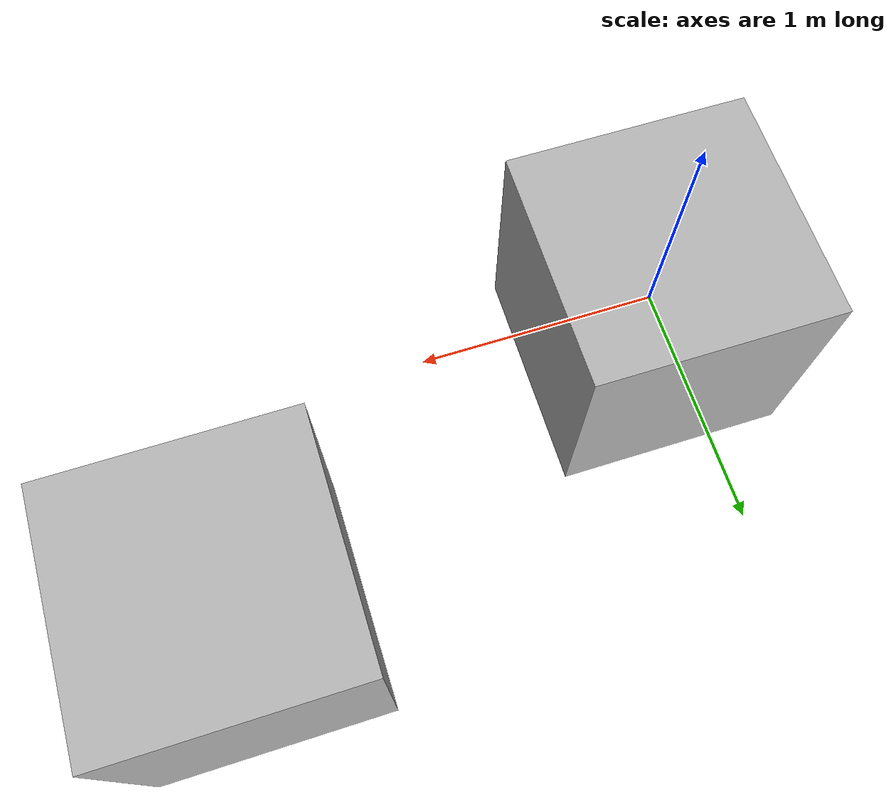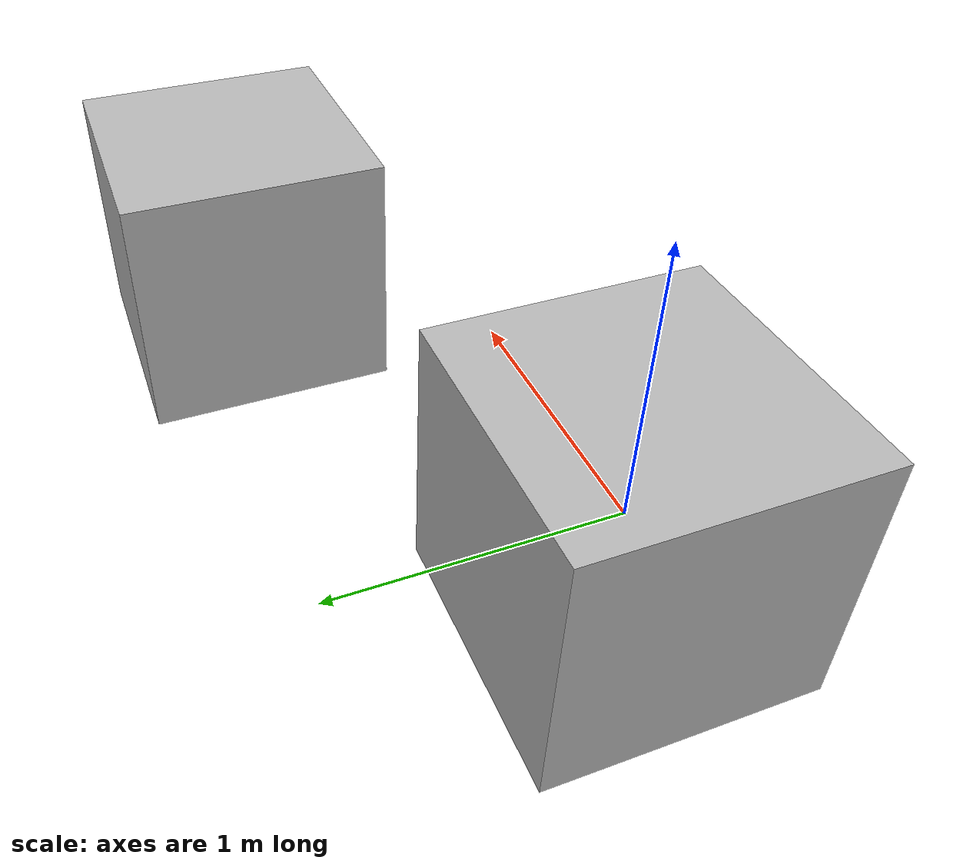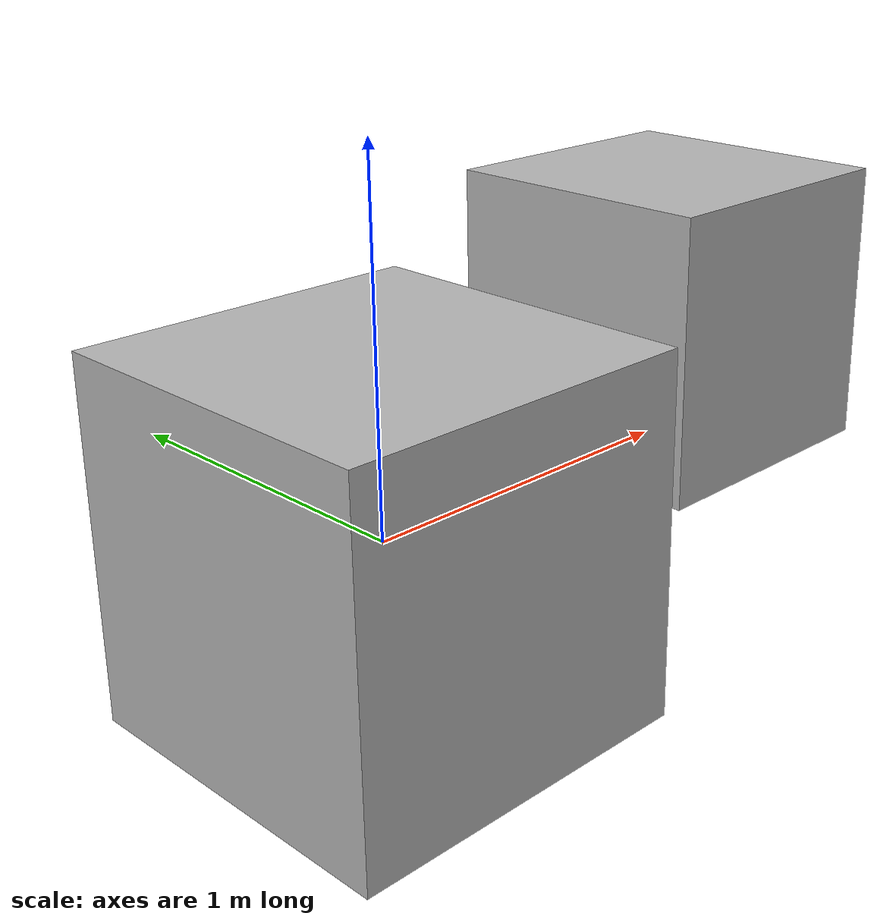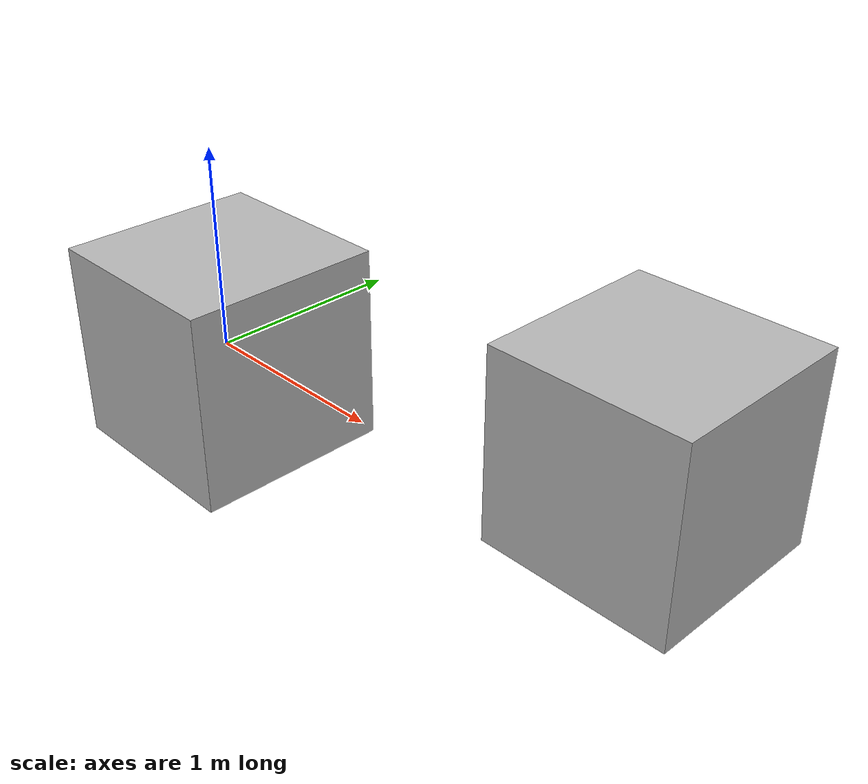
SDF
<?xml version="1.0"?>
<sdf version="1.4">
    <world name="Quasistatic Simulator Test">
        <include><uri>model://sun</uri></include>
        <include>
            <uri>model://box</uri>
            <name>hand</name>
            <pose>0 0 0 0 0 0</pose>
            <plugin name="plugin_test" filename="libplugin_test.so"/>
        </include>
        <include>
            <uri>model://box</uri>
            <name>object</name>
            <pose>2 0.75 0 0 0 0</pose>
        </include>
        <plugin name="quasistatic_physics" filename="libgazebo_quasistatic_plugin.so">
            <pusher>hand</pusher>
            <pushee mu="0.5" c="0.25">object</pushee>
        </plugin>
    </world>
</sdf>

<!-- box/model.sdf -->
<sdf version="1.4">
    <model name="box">
        <pose>0 0 0.5 0 0 0</pose>
        <static>false</static>
        <link name="link">
            <collision name="box_collision">
                <geometry>
                    <box><size>1 1 1</size></box>
                </geometry>
            </collision>
            <visual name="visual">
                <geometry>
                    <box><size>1 1 1</size></box>
                </geometry>
            </visual>
            <!-- TODO: This should be programatically generated. -->
            <sensor name='my_contact' type='contact'>
                <contact>
                <collision>box_collision</collision>
                </contact>
            </sensor>
        </link>
    </model>
</sdf>
